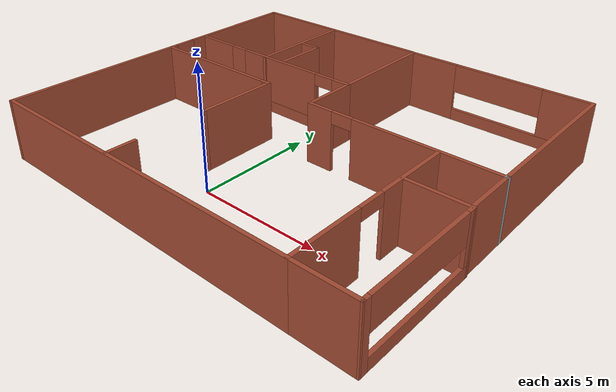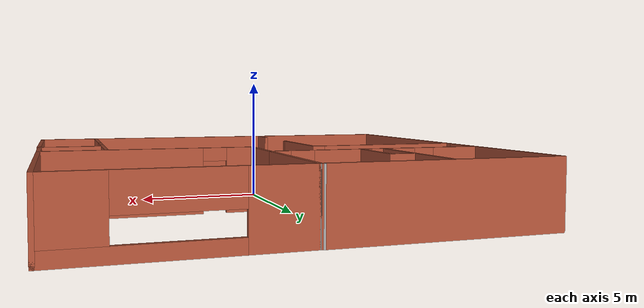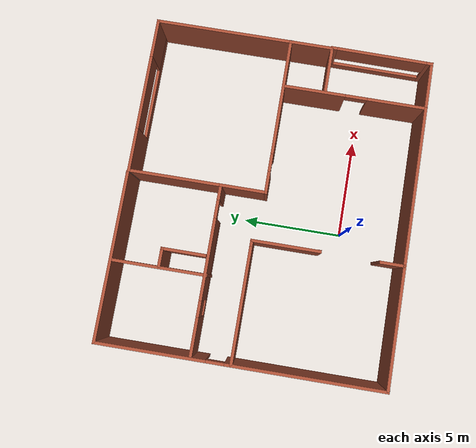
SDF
<?xml version='1.0'?>
<sdf version='1.7'>
  <model name='construction_site'>
    <pose>1.00848 3.95322 0 0 -0 0</pose>
    <link name='Wall_10'>
      <collision name='Wall_10_Collision'>
        <geometry>
          <box>
            <size>1.25 0.15 2.5</size>
          </box>
        </geometry>
        <pose>0 0 1.25 0 -0 0</pose>
      </collision>
      <visual name='Wall_10_Visual'>
        <pose>0 0 1.25 0 -0 0</pose>
        <geometry>
          <box>
            <size>1.25 0.15 2.5</size>
          </box>
        </geometry>
        <material>
          <script>
            <uri>file://media/materials/scripts/gazebo.material</uri>
            <name>Gazebo/Bricks</name>
          </script>
          <ambient>1 1 1 1</ambient>
        </material>
        <meta>
          <layer>0</layer>
        </meta>
      </visual>
      <pose>-2.18867 -6.44519 0 0 -0 -1.5708</pose>
    </link>
    <link name='Wall_13'>
      <collision name='Wall_13_Collision'>
        <geometry>
          <box>
            <size>5.75 0.15 2.5</size>
          </box>
        </geometry>
        <pose>0 0 1.25 0 -0 0</pose>
      </collision>
      <visual name='Wall_13_Visual'>
        <pose>0 0 1.25 0 -0 0</pose>
        <geometry>
          <box>
            <size>5.75 0.15 2.5</size>
          </box>
        </geometry>
        <material>
          <script>
            <uri>file://media/materials/scripts/gazebo.material</uri>
            <name>Gazebo/Bricks</name>
          </script>
          <ambient>1 1 1 1</ambient>
        </material>
        <meta>
          <layer>0</layer>
        </meta>
      </visual>
      <pose>-5.3101 0.435613 0 0 -0 0</pose>
    </link>
    <link name='Wall_14'>
      <collision name='Wall_14_Collision'>
        <geometry>
          <box>
            <size>0.5 0.15 2.5</size>
          </box>
        </geometry>
        <pose>0 0 1.25 0 -0 0</pose>
      </collision>
      <visual name='Wall_14_Visual'>
        <pose>0 0 1.25 0 -0 0</pose>
        <geometry>
          <box>
            <size>0.5 0.15 2.5</size>
          </box>
        </geometry>
        <material>
          <script>
            <uri>file://media/materials/scripts/gazebo.material</uri>
            <name>Gazebo/Bricks</name>
          </script>
          <ambient>1 1 1 1</ambient>
        </material>
        <meta>
          <layer>0</layer>
        </meta>
      </visual>
      <pose>-2.3351 0.435613 0 0 -0 0</pose>
    </link>
    <link name='Wall_17'>
      <collision name='Wall_17_Collision'>
        <geometry>
          <box>
            <size>3.5 0.15 2.5</size>
          </box>
        </geometry>
        <pose>0 0 1.25 0 -0 0</pose>
      </collision>
      <visual name='Wall_17_Visual'>
        <pose>0 0 1.25 0 -0 0</pose>
        <geometry>
          <box>
            <size>3.5 0.15 2.5</size>
          </box>
        </geometry>
        <material>
          <script>
            <uri>file://media/materials/scripts/gazebo.material</uri>
            <name>Gazebo/Bricks</name>
          </script>
          <ambient>1 1 1 1</ambient>
        </material>
        <meta>
          <layer>0</layer>
        </meta>
      </visual>
      <pose>-2.1601 -1.23939 0 0 -0 -1.5708</pose>
    </link>
    <link name='Wall_18'>
      <collision name='Wall_18_Collision'>
        <geometry>
          <box>
            <size>0.16 0.15 2.5</size>
          </box>
        </geometry>
        <pose>0 0 1.25 0 -0 0</pose>
      </collision>
      <visual name='Wall_18_Visual'>
        <pose>0 0 1.25 0 -0 0</pose>
        <geometry>
          <box>
            <size>0.16 0.15 2.5</size>
          </box>
        </geometry>
        <material>
          <script>
            <uri>file://media/materials/scripts/gazebo.material</uri>
            <name>Gazebo/Bricks</name>
          </script>
          <ambient>1 1 1 1</ambient>
        </material>
        <meta>
          <layer>0</layer>
        </meta>
      </visual>
      <pose>-2.1551 -2.91439 0 0 -0 0</pose>
    </link>
    <link name='Wall_2'>
      <collision name='Wall_2_Collision'>
        <geometry>
          <box>
            <size>14 0.15 2.5</size>
          </box>
        </geometry>
        <pose>0 0 1.25 0 -0 0</pose>
      </collision>
      <visual name='Wall_2_Visual'>
        <pose>0 0 1.25 0 -0 0</pose>
        <geometry>
          <box>
            <size>14 0.15 2.5</size>
          </box>
        </geometry>
        <material>
          <script>
            <uri>file://media/materials/scripts/gazebo.material</uri>
            <name>Gazebo/Bricks</name>
          </script>
          <ambient>1 1 1 1</ambient>
        </material>
        <meta>
          <layer>0</layer>
        </meta>
      </visual>
      <pose>-1.15348 -7.05321 0 0 -0 3.14159</pose>
    </link>
    <link name='Wall_20'>
      <pose>-3.89875 2.39903 0 0 -0 0</pose>
      <visual name='Wall_20_Visual_0'>
        <pose>-3.28453 0 1.25 0 -0 0</pose>
        <geometry>
          <box>
            <size>1.93094 0.15 2.5</size>
          </box>
        </geometry>
        <material>
          <script>
            <uri>file://media/materials/scripts/gazebo.material</uri>
            <name>Gazebo/Bricks</name>
          </script>
          <ambient>1 1 1 1</ambient>
        </material>
        <meta>
          <layer>0</layer>
        </meta>
      </visual>
      <collision name='Wall_20_Collision_0'>
        <geometry>
          <box>
            <size>1.93094 0.15 2.5</size>
          </box>
        </geometry>
        <pose>-3.28453 0 1.25 0 -0 0</pose>
      </collision>
      <visual name='Wall_20_Visual_1'>
        <pose>3.83879 0 1.25 0 -0 0</pose>
        <geometry>
          <box>
            <size>0.822425 0.15 2.5</size>
          </box>
        </geometry>
        <material>
          <script>
            <uri>file://media/materials/scripts/gazebo.material</uri>
            <name>Gazebo/Bricks</name>
          </script>
          <ambient>1 1 1 1</ambient>
        </material>
        <meta>
          <layer>0</layer>
        </meta>
      </visual>
      <collision name='Wall_20_Collision_1'>
        <geometry>
          <box>
            <size>0.822425 0.15 2.5</size>
          </box>
        </geometry>
        <pose>3.83879 0 1.25 0 -0 0</pose>
      </collision>
      <visual name='Wall_20_Visual_2'>
        <pose>0.104256 0 0.25 0 -0 0</pose>
        <geometry>
          <box>
            <size>4.84664 0.15 0.5</size>
          </box>
        </geometry>
        <material>
          <script>
            <uri>file://media/materials/scripts/gazebo.material</uri>
            <name>Gazebo/Bricks</name>
          </script>
          <ambient>1 1 1 1</ambient>
        </material>
        <meta>
          <layer>0</layer>
        </meta>
      </visual>
      <collision name='Wall_20_Collision_2'>
        <geometry>
          <box>
            <size>4.84664 0.15 0.5</size>
          </box>
        </geometry>
        <pose>0.104256 0 0.25 0 -0 0</pose>
      </collision>
      <visual name='Wall_20_Visual_3'>
        <pose>0.504256 0 1.5 0 -0 0</pose>
        <geometry>
          <box>
            <size>4.04664 0.15 2</size>
          </box>
        </geometry>
        <material>
          <script>
            <uri>file://media/materials/scripts/gazebo.material</uri>
            <name>Gazebo/Bricks</name>
          </script>
          <ambient>1 1 1 1</ambient>
        </material>
        <meta>
          <layer>0</layer>
        </meta>
      </visual>
      <collision name='Wall_20_Collision_3'>
        <geometry>
          <box>
            <size>4.04664 0.15 2</size>
          </box>
        </geometry>
        <pose>0.504256 0 1.5 0 -0 0</pose>
      </collision>
      <visual name='Wall_20_Visual_4'>
        <pose>-1.91906 0 1.9 0 -0 0</pose>
        <geometry>
          <box>
            <size>0.8 0.15 1.2</size>
          </box>
        </geometry>
        <material>
          <script>
            <uri>file://media/materials/scripts/gazebo.material</uri>
            <name>Gazebo/Bricks</name>
          </script>
          <ambient>1 1 1 1</ambient>
        </material>
        <meta>
          <layer>0</layer>
        </meta>
      </visual>
      <collision name='Wall_20_Collision_4'>
        <geometry>
          <box>
            <size>0.8 0.15 1.2</size>
          </box>
        </geometry>
        <pose>-1.91906 0 1.9 0 -0 0</pose>
      </collision>
      <visual name='Wall_20_Visual_5'>
        <pose>2.97757 0 2.25 0 -0 0</pose>
        <geometry>
          <box>
            <size>0.9 0.15 0.5</size>
          </box>
        </geometry>
        <material>
          <script>
            <uri>file://media/materials/scripts/gazebo.material</uri>
            <name>Gazebo/Bricks</name>
          </script>
          <ambient>1 1 1 1</ambient>
        </material>
        <meta>
          <layer>0</layer>
        </meta>
      </visual>
      <collision name='Wall_20_Collision_5'>
        <geometry>
          <box>
            <size>0.9 0.15 0.5</size>
          </box>
        </geometry>
        <pose>2.97757 0 2.25 0 -0 0</pose>
      </collision>
    </link>
    <link name='Wall_22'>
      <collision name='Wall_22_Collision'>
        <geometry>
          <box>
            <size>8.5 0.15 2.5</size>
          </box>
        </geometry>
        <pose>0 0 1.25 0 -0 0</pose>
      </collision>
      <visual name='Wall_22_Visual'>
        <pose>0 0 1.25 0 -0 0</pose>
        <geometry>
          <box>
            <size>8.5 0.15 2.5</size>
          </box>
        </geometry>
        <material>
          <script>
            <uri>file://media/materials/scripts/gazebo.material</uri>
            <name>Gazebo/Bricks</name>
          </script>
          <ambient>1 1 1 1</ambient>
        </material>
        <meta>
          <layer>0</layer>
        </meta>
      </visual>
      <pose>-3.98574 7.04077 0 0 -0 3.14159</pose>
    </link>
    <link name='Wall_24'>
      <collision name='Wall_24_Collision'>
        <geometry>
          <box>
            <size>4.75 0.15 2.5</size>
          </box>
        </geometry>
        <pose>0 0 1.25 0 -0 0</pose>
      </collision>
      <visual name='Wall_24_Visual'>
        <pose>0 0 1.25 0 -0 0</pose>
        <geometry>
          <box>
            <size>4.75 0.15 2.5</size>
          </box>
        </geometry>
        <material>
          <script>
            <uri>file://media/materials/scripts/gazebo.material</uri>
            <name>Gazebo/Bricks</name>
          </script>
          <ambient>1 1 1 1</ambient>
        </material>
        <meta>
          <layer>0</layer>
        </meta>
      </visual>
      <pose>-4.18204 4.64922 0 0 -0 1.5708</pose>
    </link>
    <link name='Wall_26'>
      <collision name='Wall_26_Collision'>
        <geometry>
          <box>
            <size>1 0.15 2.5</size>
          </box>
        </geometry>
        <pose>0 0 1.25 0 -0 0</pose>
      </collision>
      <visual name='Wall_26_Visual'>
        <pose>0 0 1.25 0 -0 0</pose>
        <geometry>
          <box>
            <size>1 0.15 2.5</size>
          </box>
        </geometry>
        <material>
          <script>
            <uri>file://media/materials/scripts/gazebo.material</uri>
            <name>Gazebo/Bricks</name>
          </script>
          <ambient>1 1 1 1</ambient>
        </material>
        <meta>
          <layer>0</layer>
        </meta>
      </visual>
      <pose>-3.67704 4.66922 0 0 -0 0</pose>
    </link>
    <link name='Wall_27'>
      <collision name='Wall_27_Collision'>
        <geometry>
          <box>
            <size>2.25 0.15 2.5</size>
          </box>
        </geometry>
        <pose>0 0 1.25 0 -0 0</pose>
      </collision>
      <visual name='Wall_27_Visual'>
        <pose>0 0 1.25 0 -0 0</pose>
        <geometry>
          <box>
            <size>2.25 0.15 2.5</size>
          </box>
        </geometry>
        <material>
          <script>
            <uri>file://media/materials/scripts/gazebo.material</uri>
            <name>Gazebo/Bricks</name>
          </script>
          <ambient>1 1 1 1</ambient>
        </material>
        <meta>
          <layer>0</layer>
        </meta>
      </visual>
      <pose>-3.25204 3.61922 0 0 -0 -1.5708</pose>
    </link>
    <link name='Wall_29'>
      <collision name='Wall_29_Collision'>
        <geometry>
          <box>
            <size>2.25 0.15 2.5</size>
          </box>
        </geometry>
        <pose>0 0 1.25 0 -0 0</pose>
      </collision>
      <visual name='Wall_29_Visual'>
        <pose>0 0 1.25 0 -0 0</pose>
        <geometry>
          <box>
            <size>2.25 0.15 2.5</size>
          </box>
        </geometry>
        <material>
          <script>
            <uri>file://media/materials/scripts/gazebo.material</uri>
            <name>Gazebo/Bricks</name>
          </script>
          <ambient>1 1 1 1</ambient>
        </material>
        <meta>
          <layer>0</layer>
        </meta>
      </visual>
      <pose>0.276251 1.34903 0 0 -0 -1.5708</pose>
    </link>
    <link name='Wall_31'>
      <collision name='Wall_31_Collision'>
        <geometry>
          <box>
            <size>0.237615 0.15 2.5</size>
          </box>
        </geometry>
        <pose>0 0 1.25 0 -0 0</pose>
      </collision>
      <visual name='Wall_31_Visual'>
        <pose>0 0 1.25 0 -0 0</pose>
        <geometry>
          <box>
            <size>0.237615 0.15 2.5</size>
          </box>
        </geometry>
        <material>
          <script>
            <uri>file://media/materials/scripts/gazebo.material</uri>
            <name>Gazebo/Grey</name>
          </script>
          <ambient>1 1 1 1</ambient>
        </material>
        <meta>
          <layer>0</layer>
        </meta>
      </visual>
      <pose>0.231205 7.02813 0 0 -0 -0.292725</pose>
    </link>
    <link name='Wall_32'>
      <collision name='Wall_32_Collision'>
        <geometry>
          <box>
            <size>4.75 0.15 2.5</size>
          </box>
        </geometry>
        <pose>0 0 1.25 0 -0 0</pose>
      </collision>
      <visual name='Wall_32_Visual'>
        <pose>0 0 1.25 0 -0 0</pose>
        <geometry>
          <box>
            <size>4.75 0.15 2.5</size>
          </box>
        </geometry>
        <material>
          <script>
            <uri>file://media/materials/scripts/gazebo.material</uri>
            <name>Gazebo/Bricks</name>
          </script>
          <ambient>1 1 1 1</ambient>
        </material>
        <meta>
          <layer>0</layer>
        </meta>
      </visual>
      <pose>0.273149 4.71549 0 0 -0 -1.5708</pose>
    </link>
    <link name='Wall_34'>
      <pose>4.19815 7.01549 0 0 -0 0</pose>
      <visual name='Wall_34_Visual_0'>
        <pose>-2.88156 0 1.25 0 -0 0</pose>
        <geometry>
          <box>
            <size>2.23688 0.15 2.5</size>
          </box>
        </geometry>
        <material>
          <script>
            <uri>file://media/materials/scripts/gazebo.material</uri>
            <name>Gazebo/Bricks</name>
          </script>
          <ambient>1 1 1 1</ambient>
        </material>
        <meta>
          <layer>0</layer>
        </meta>
      </visual>
      <collision name='Wall_34_Collision_0'>
        <geometry>
          <box>
            <size>2.23688 0.15 2.5</size>
          </box>
        </geometry>
        <pose>-2.88156 0 1.25 0 -0 0</pose>
      </collision>
      <visual name='Wall_34_Visual_1'>
        <pose>1.11844 0 0.25 0 -0 0</pose>
        <geometry>
          <box>
            <size>5.76312 0.15 0.5</size>
          </box>
        </geometry>
        <material>
          <script>
            <uri>file://media/materials/scripts/gazebo.material</uri>
            <name>Gazebo/Bricks</name>
          </script>
          <ambient>1 1 1 1</ambient>
        </material>
        <meta>
          <layer>0</layer>
        </meta>
      </visual>
      <collision name='Wall_34_Collision_1'>
        <geometry>
          <box>
            <size>5.76312 0.15 0.5</size>
          </box>
        </geometry>
        <pose>1.11844 0 0.25 0 -0 0</pose>
      </collision>
      <visual name='Wall_34_Visual_2'>
        <pose>3.00069 0 1.5 0 -0 0</pose>
        <geometry>
          <box>
            <size>1.99861 0.15 2</size>
          </box>
        </geometry>
        <material>
          <script>
            <uri>file://media/materials/scripts/gazebo.material</uri>
            <name>Gazebo/Bricks</name>
          </script>
          <ambient>1 1 1 1</ambient>
        </material>
        <meta>
          <layer>0</layer>
        </meta>
      </visual>
      <collision name='Wall_34_Collision_2'>
        <geometry>
          <box>
            <size>1.99861 0.15 2</size>
          </box>
        </geometry>
        <pose>3.00069 0 1.5 0 -0 0</pose>
      </collision>
      <visual name='Wall_34_Visual_3'>
        <pose>0.119133 0 1.9 0 -0 0</pose>
        <geometry>
          <box>
            <size>3.76451 0.15 1.2</size>
          </box>
        </geometry>
        <material>
          <script>
            <uri>file://media/materials/scripts/gazebo.material</uri>
            <name>Gazebo/Bricks</name>
          </script>
          <ambient>1 1 1 1</ambient>
        </material>
        <meta>
          <layer>0</layer>
        </meta>
      </visual>
      <collision name='Wall_34_Collision_3'>
        <geometry>
          <box>
            <size>3.76451 0.15 1.2</size>
          </box>
        </geometry>
        <pose>0.119133 0 1.9 0 -0 0</pose>
      </collision>
    </link>
    <link name='Wall_35'>
      <collision name='Wall_35_Collision'>
        <geometry>
          <box>
            <size>7 0.15 2.5</size>
          </box>
        </geometry>
        <pose>0 0 1.25 0 -0 0</pose>
      </collision>
      <visual name='Wall_35_Visual'>
        <pose>0 0 1.25 0 -0 0</pose>
        <geometry>
          <box>
            <size>7 0.15 2.5</size>
          </box>
        </geometry>
        <material>
          <script>
            <uri>file://media/materials/scripts/gazebo.material</uri>
            <name>Gazebo/Bricks</name>
          </script>
          <ambient>1 1 1 1</ambient>
        </material>
        <meta>
          <layer>0</layer>
        </meta>
      </visual>
      <pose>8.12315 3.59049 0 0 -0 -1.5708</pose>
    </link>
    <link name='Wall_36'>
      <pose>4.19815 0.165492 0 0 -0 3.14159</pose>
      <visual name='Wall_36_Visual_0'>
        <pose>-1.0171 0 1.25 0 -0 0</pose>
        <geometry>
          <box>
            <size>5.96579 0.15 2.5</size>
          </box>
        </geometry>
        <material>
          <script>
            <uri>file://media/materials/scripts/gazebo.material</uri>
            <name>Gazebo/Bricks</name>
          </script>
          <ambient>1 1 1 1</ambient>
        </material>
        <meta>
          <layer>0</layer>
        </meta>
      </visual>
      <collision name='Wall_36_Collision_0'>
        <geometry>
          <box>
            <size>5.96579 0.15 2.5</size>
          </box>
        </geometry>
        <pose>-1.0171 0 1.25 0 -0 0</pose>
      </collision>
      <visual name='Wall_36_Visual_1'>
        <pose>3.4329 0 1.25 0 -0 0</pose>
        <geometry>
          <box>
            <size>1.1342 0.15 2.5</size>
          </box>
        </geometry>
        <material>
          <script>
            <uri>file://media/materials/scripts/gazebo.material</uri>
            <name>Gazebo/Bricks</name>
          </script>
          <ambient>1 1 1 1</ambient>
        </material>
        <meta>
          <layer>0</layer>
        </meta>
      </visual>
      <collision name='Wall_36_Collision_1'>
        <geometry>
          <box>
            <size>1.1342 0.15 2.5</size>
          </box>
        </geometry>
        <pose>3.4329 0 1.25 0 -0 0</pose>
      </collision>
      <visual name='Wall_36_Visual_2'>
        <pose>2.4158 0 2.25 0 -0 0</pose>
        <geometry>
          <box>
            <size>0.9 0.15 0.5</size>
          </box>
        </geometry>
        <material>
          <script>
            <uri>file://media/materials/scripts/gazebo.material</uri>
            <name>Gazebo/Bricks</name>
          </script>
          <ambient>1 1 1 1</ambient>
        </material>
        <meta>
          <layer>0</layer>
        </meta>
      </visual>
      <collision name='Wall_36_Collision_2'>
        <geometry>
          <box>
            <size>0.9 0.15 0.5</size>
          </box>
        </geometry>
        <pose>2.4158 0 2.25 0 -0 0</pose>
      </collision>
    </link>
    <link name='Wall_38'>
      <pose>5.77152 -3.50321 0 0 -0 1.5708</pose>
      <visual name='Wall_38_Visual_0'>
        <pose>-2.09997 0 1.25 0 -0 0</pose>
        <geometry>
          <box>
            <size>3.05006 0.15 2.5</size>
          </box>
        </geometry>
        <material>
          <script>
            <uri>file://media/materials/scripts/gazebo.material</uri>
            <name>Gazebo/Bricks</name>
          </script>
          <ambient>1 1 1 1</ambient>
        </material>
        <meta>
          <layer>0</layer>
        </meta>
      </visual>
      <collision name='Wall_38_Collision_0'>
        <geometry>
          <box>
            <size>3.05006 0.15 2.5</size>
          </box>
        </geometry>
        <pose>-2.09997 0 1.25 0 -0 0</pose>
      </collision>
      <visual name='Wall_38_Visual_1'>
        <pose>2.07679 0 1.25 0 -0 0</pose>
        <geometry>
          <box>
            <size>3.09642 0.15 2.5</size>
          </box>
        </geometry>
        <material>
          <script>
            <uri>file://media/materials/scripts/gazebo.material</uri>
            <name>Gazebo/Bricks</name>
          </script>
          <ambient>1 1 1 1</ambient>
        </material>
        <meta>
          <layer>0</layer>
        </meta>
      </visual>
      <collision name='Wall_38_Collision_1'>
        <geometry>
          <box>
            <size>3.09642 0.15 2.5</size>
          </box>
        </geometry>
        <pose>2.07679 0 1.25 0 -0 0</pose>
      </collision>
      <visual name='Wall_38_Visual_2'>
        <pose>-0.02318 0 2.25 0 -0 0</pose>
        <geometry>
          <box>
            <size>1.10351 0.15 0.5</size>
          </box>
        </geometry>
        <material>
          <script>
            <uri>file://media/materials/scripts/gazebo.material</uri>
            <name>Gazebo/Bricks</name>
          </script>
          <ambient>1 1 1 1</ambient>
        </material>
        <meta>
          <layer>0</layer>
        </meta>
      </visual>
      <collision name='Wall_38_Collision_2'>
        <geometry>
          <box>
            <size>1.10351 0.15 0.5</size>
          </box>
        </geometry>
        <pose>-0.02318 0 2.25 0 -0 0</pose>
      </collision>
    </link>
    <link name='Wall_41'>
      <collision name='Wall_41_Collision'>
        <geometry>
          <box>
            <size>2.25 0.15 2.5</size>
          </box>
        </geometry>
        <pose>0 0 1.25 0 -0 0</pose>
      </collision>
      <visual name='Wall_41_Visual'>
        <pose>0 0 1.25 0 -0 0</pose>
        <geometry>
          <box>
            <size>2.25 0.15 2.5</size>
          </box>
        </geometry>
        <material>
          <script>
            <uri>file://media/materials/scripts/gazebo.material</uri>
            <name>Gazebo/Bricks</name>
          </script>
          <ambient>1 1 1 1</ambient>
        </material>
        <meta>
          <layer>0</layer>
        </meta>
      </visual>
      <pose>8.12315 -0.884508 0 0 -0 1.5708</pose>
    </link>
    <link name='Wall_42'>
      <collision name='Wall_42_Collision'>
        <geometry>
          <box>
            <size>0.16 0.15 2.5</size>
          </box>
        </geometry>
        <pose>0 0 1.25 0 -0 0</pose>
      </collision>
      <visual name='Wall_42_Visual'>
        <pose>0 0 1.25 0 -0 0</pose>
        <geometry>
          <box>
            <size>0.16 0.15 2.5</size>
          </box>
        </geometry>
        <material>
          <script>
            <uri>file://media/materials/scripts/gazebo.material</uri>
            <name>Gazebo/Grey</name>
          </script>
          <ambient>1 1 1 1</ambient>
        </material>
        <meta>
          <layer>0</layer>
        </meta>
      </visual>
      <pose>8.12815 0.165492 0 0 -0 0</pose>
    </link>
    <link name='Wall_44'>
      <collision name='Wall_44_Collision'>
        <geometry>
          <box>
            <size>2.5 0.15 2.5</size>
          </box>
        </geometry>
        <pose>0 0 1.25 0 -0 0</pose>
      </collision>
      <visual name='Wall_44_Visual'>
        <pose>0 0 1.25 0 -0 0</pose>
        <geometry>
          <box>
            <size>2.5 0.15 2.5</size>
          </box>
        </geometry>
        <material>
          <script>
            <uri>file://media/materials/scripts/gazebo.material</uri>
            <name>Gazebo/Bricks</name>
          </script>
          <ambient>1 1 1 1</ambient>
        </material>
        <meta>
          <layer>0</layer>
        </meta>
      </visual>
      <pose>6.94652 -7.05321 0 0 -0 0</pose>
    </link>
    <link name='Wall_46'>
      <collision name='Wall_46_Collision'>
        <geometry>
          <box>
            <size>2.5 0.15 2.5</size>
          </box>
        </geometry>
        <pose>0 0 1.25 0 -0 0</pose>
      </collision>
      <visual name='Wall_46_Visual'>
        <pose>0 0 1.25 0 -0 0</pose>
        <geometry>
          <box>
            <size>2.5 0.15 2.5</size>
          </box>
        </geometry>
        <material>
          <script>
            <uri>file://media/materials/scripts/gazebo.material</uri>
            <name>Gazebo/Bricks</name>
          </script>
          <ambient>1 1 1 1</ambient>
        </material>
        <meta>
          <layer>0</layer>
        </meta>
      </visual>
      <pose>6.98517 -1.9571 0 0 -0 0</pose>
    </link>
    <link name='Wall_48'>
      <pose>8.14085 -4.50516 0 0 -0 1.56321</pose>
      <visual name='Wall_48_Visual_0'>
        <pose>-2.45288 0 1.25 0 -0 0</pose>
        <geometry>
          <box>
            <size>0.3405 0.15 2.5</size>
          </box>
        </geometry>
        <material>
          <script>
            <uri>file://media/materials/scripts/gazebo.material</uri>
            <name>Gazebo/Bricks</name>
          </script>
          <ambient>1 1 1 1</ambient>
        </material>
        <meta>
          <layer>0</layer>
        </meta>
      </visual>
      <collision name='Wall_48_Collision_0'>
        <geometry>
          <box>
            <size>0.3405 0.15 2.5</size>
          </box>
        </geometry>
        <pose>-2.45288 0 1.25 0 -0 0</pose>
      </collision>
      <visual name='Wall_48_Visual_1'>
        <pose>0.17025 0 0.25 0 -0 0</pose>
        <geometry>
          <box>
            <size>4.90576 0.15 0.5</size>
          </box>
        </geometry>
        <material>
          <script>
            <uri>file://media/materials/scripts/gazebo.material</uri>
            <name>Gazebo/Bricks</name>
          </script>
          <ambient>1 1 1 1</ambient>
        </material>
        <meta>
          <layer>0</layer>
        </meta>
      </visual>
      <collision name='Wall_48_Collision_1'>
        <geometry>
          <box>
            <size>4.90576 0.15 0.5</size>
          </box>
        </geometry>
        <pose>0.17025 0 0.25 0 -0 0</pose>
      </collision>
      <visual name='Wall_48_Visual_2'>
        <pose>2.45286 0 1.5 0 -0 0</pose>
        <geometry>
          <box>
            <size>0.340548 0.15 2</size>
          </box>
        </geometry>
        <material>
          <script>
            <uri>file://media/materials/scripts/gazebo.material</uri>
            <name>Gazebo/Bricks</name>
          </script>
          <ambient>1 1 1 1</ambient>
        </material>
        <meta>
          <layer>0</layer>
        </meta>
      </visual>
      <collision name='Wall_48_Collision_2'>
        <geometry>
          <box>
            <size>0.340548 0.15 2</size>
          </box>
        </geometry>
        <pose>2.45286 0 1.5 0 -0 0</pose>
      </collision>
      <visual name='Wall_48_Visual_3'>
        <pose>-2.4e-05 0 1.9 0 -0 0</pose>
        <geometry>
          <box>
            <size>4.56522 0.15 1.2</size>
          </box>
        </geometry>
        <material>
          <script>
            <uri>file://media/materials/scripts/gazebo.material</uri>
            <name>Gazebo/Bricks</name>
          </script>
          <ambient>1 1 1 1</ambient>
        </material>
        <meta>
          <layer>0</layer>
        </meta>
      </visual>
      <collision name='Wall_48_Collision_3'>
        <geometry>
          <box>
            <size>4.56522 0.15 1.2</size>
          </box>
        </geometry>
        <pose>-2.4e-05 0 1.9 0 -0 0</pose>
      </collision>
    </link>
    <link name='Wall_6'>
      <pose>-8.16074 -0.009226 0 0 -0 -1.5708</pose>
      <visual name='Wall_6_Visual_0'>
        <pose>-4.39838 0 1.25 0 -0 0</pose>
        <geometry>
          <box>
            <size>5.45324 0.15 2.5</size>
          </box>
        </geometry>
        <material>
          <script>
            <uri>file://media/materials/scripts/gazebo.material</uri>
            <name>Gazebo/Bricks</name>
          </script>
          <ambient>1 1 1 1</ambient>
        </material>
        <meta>
          <layer>0</layer>
        </meta>
      </visual>
      <collision name='Wall_6_Collision_0'>
        <geometry>
          <box>
            <size>5.45324 0.15 2.5</size>
          </box>
        </geometry>
        <pose>-4.39838 0 1.25 0 -0 0</pose>
      </collision>
      <visual name='Wall_6_Visual_1'>
        <pose>3.17662 0 1.25 0 -0 0</pose>
        <geometry>
          <box>
            <size>7.89676 0.15 2.5</size>
          </box>
        </geometry>
        <material>
          <script>
            <uri>file://media/materials/scripts/gazebo.material</uri>
            <name>Gazebo/Bricks</name>
          </script>
          <ambient>1 1 1 1</ambient>
        </material>
        <meta>
          <layer>0</layer>
        </meta>
      </visual>
      <collision name='Wall_6_Collision_1'>
        <geometry>
          <box>
            <size>7.89676 0.15 2.5</size>
          </box>
        </geometry>
        <pose>3.17662 0 1.25 0 -0 0</pose>
      </collision>
      <visual name='Wall_6_Visual_2'>
        <pose>-1.22176 0 2.25 0 -0 0</pose>
        <geometry>
          <box>
            <size>0.9 0.15 0.5</size>
          </box>
        </geometry>
        <material>
          <script>
            <uri>file://media/materials/scripts/gazebo.material</uri>
            <name>Gazebo/Bricks</name>
          </script>
          <ambient>1 1 1 1</ambient>
        </material>
        <meta>
          <layer>0</layer>
        </meta>
      </visual>
      <collision name='Wall_6_Collision_2'>
        <geometry>
          <box>
            <size>0.9 0.15 0.5</size>
          </box>
        </geometry>
        <pose>-1.22176 0 2.25 0 -0 0</pose>
      </collision>
    </link>
    <static>1</static>
  </model>
</sdf>
